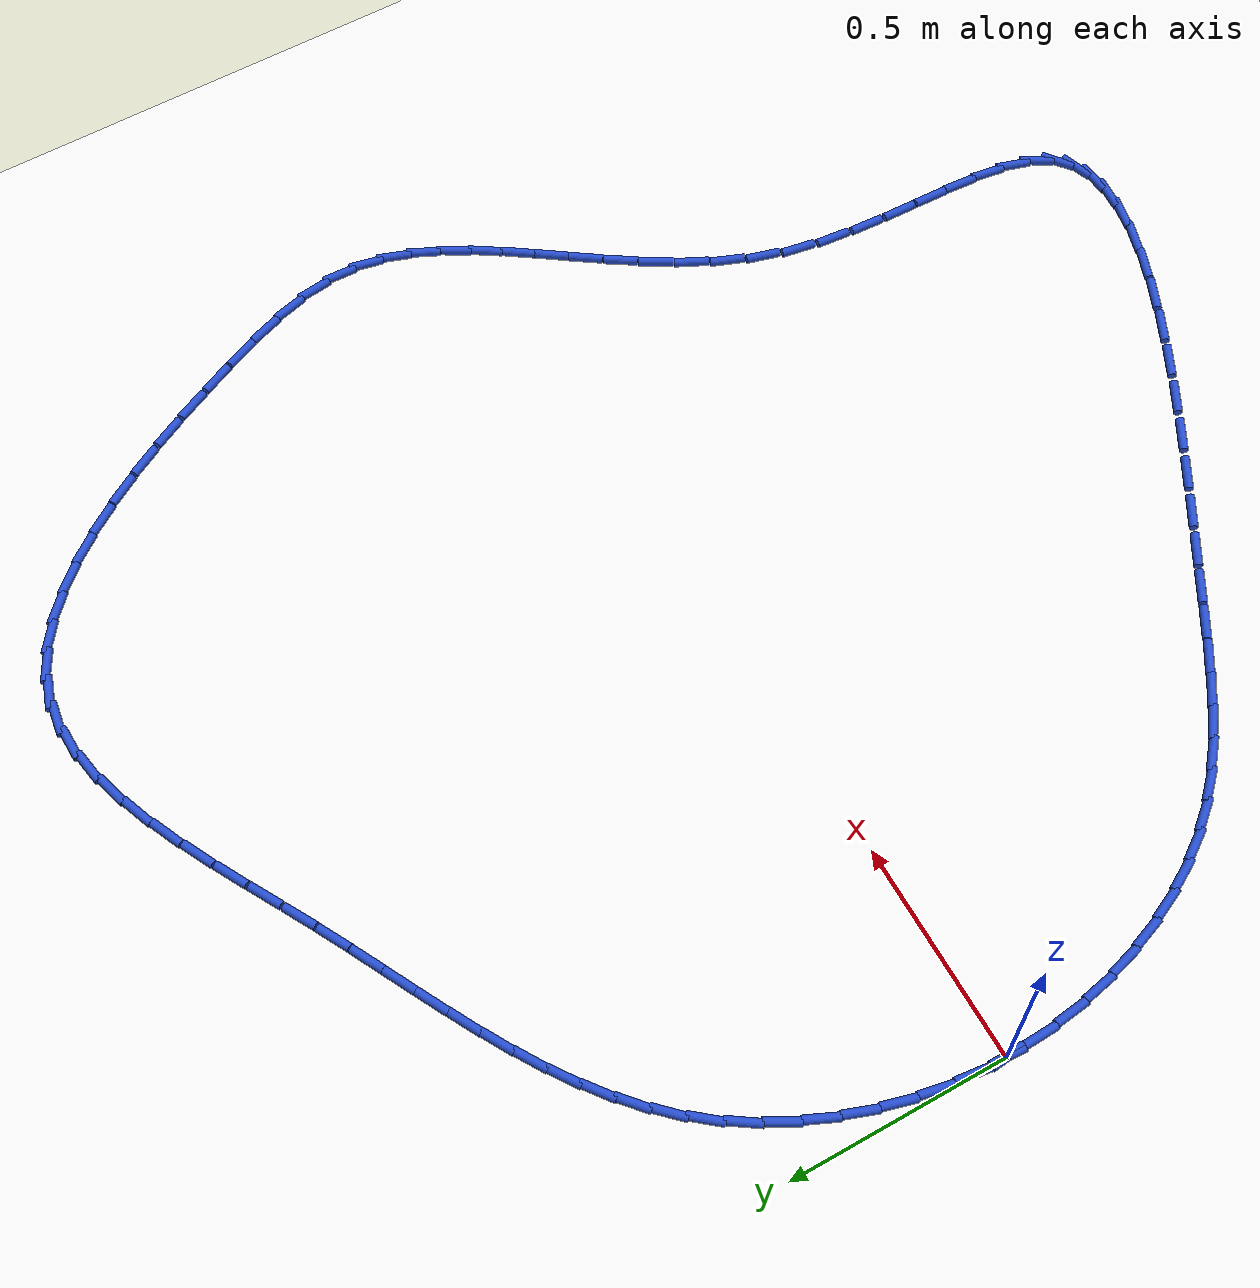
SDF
<sdf version="1.6">
 <world name="default">
  <light name="sun" type="directional">
   <pose>0 0 10 0 -0 0</pose>
   <diffuse>0.8 0.8 0.8 1</diffuse>
   <specular>0.2 0.2 0.2 1</specular>
   <attenuation>
    <range>1000</range>
    <constant>0.9</constant>
    <linear>0.01</linear>
    <quadratic>0.001</quadratic>
   </attenuation>
   <direction>-0.5 0.1 -0.9</direction>
  </light>
  <model name="ground_plane">
   <static>1</static>
   <link name="link">
    <collision name="collision">
     <geometry><plane><normal>0 0 1</normal><size>100 100</size></plane></geometry>
     <surface><friction><ode><mu>100</mu><mu2>50</mu2></ode></friction></surface>
    </collision>
    <visual name="visual">
     <cast_shadows>0</cast_shadows>
     <geometry><plane><normal>0 0 1</normal><size>100 100</size></plane></geometry>
     <material>
      <script><uri>file://media/materials/scripts/gazebo.material</uri><name>Gazebo/WhiteGlow</name></script>
     </material>
    </visual>
   </link>
  </model>
  <gravity>0 0 -9.8</gravity>
  <magnetic_field>6e-06 2.3e-05 -4.2e-05</magnetic_field>
  <atmosphere type="adiabatic"/>
  <physics name="default_physics" default="0" type="ode">
   <max_step_size>0.001</max_step_size>
   <real_time_factor>1</real_time_factor>
   <real_time_update_rate>1000</real_time_update_rate>
  </physics>
  <scene><ambient>0.4 0.4 0.4 1</ambient><background>0.7 0.7 0.7 1</background><shadows>1</shadows></scene>
  <spherical_coordinates>
   <surface_model>EARTH_WGS84</surface_model>
   <latitude_deg>0</latitude_deg>
   <longitude_deg>0</longitude_deg>
   <elevation>0</elevation>
   <heading_deg>0</heading_deg>
  </spherical_coordinates>
  <model name="line">
   <link name="link_0">
    <pose>-2.7755575615628914e-17 -5.551115123125783e-17 0.01 0 1.57 1.533787583954579</pose>
    <collision name="collision">
     <geometry><cylinder><radius>0.01</radius><length>0.08</length></cylinder></geometry>
    </collision>
    <visual name="visual">
     <material>
      <script><name>Gazebo/Blue</name><uri>file://media/materials/scripts/gazebo.material</uri></script>
     </material>
     <geometry><cylinder><radius>0.01</radius><length>0.08</length></cylinder></geometry>
    </visual>
   </link>
   <link name="link_1">
    <pose>0.002935788695738741 0.07929067611293499 0.01 0 1.57 1.4556822780847238</pose>
    <collision name="collision">
     <geometry><cylinder><radius>0.01</radius><length>0.08</length></cylinder></geometry>
    </collision>
    <visual name="visual">
     <material>
      <script><name>Gazebo/Blue</name><uri>file://media/materials/scripts/gazebo.material</uri></script>
     </material>
     <geometry><cylinder><radius>0.01</radius><length>0.08</length></cylinder></geometry>
    </visual>
   </link>
   <link name="link_2">
    <pose>0.012015870276710035 0.15782095757215628 0.01 0 1.57 1.3786054987707859</pose>
    <collision name="collision">
     <geometry><cylinder><radius>0.01</radius><length>0.08</length></cylinder></geometry>
    </collision>
    <visual name="visual">
     <material>
      <script><name>Gazebo/Blue</name><uri>file://media/materials/scripts/gazebo.material</uri></script>
     </material>
     <geometry><cylinder><radius>0.01</radius><length>0.08</length></cylinder></geometry>
    </visual>
   </link>
   <link name="link_3">
    <pose>0.0270281728820893 0.2349682800658405 0.01 0 1.57 1.301583329167883</pose>
    <collision name="collision">
     <geometry><cylinder><radius>0.01</radius><length>0.08</length></cylinder></geometry>
    </collision>
    <visual name="visual">
     <material>
      <script><name>Gazebo/Blue</name><uri>file://media/materials/scripts/gazebo.material</uri></script>
     </material>
     <geometry><cylinder><radius>0.01</radius><length>0.08</length></cylinder></geometry>
    </visual>
   </link>
   <link name="link_4">
    <pose>0.04776062465105198 0.31011007928216444 0.01 0 1.57 1.2235863750263407</pose>
    <collision name="collision">
     <geometry><cylinder><radius>0.01</radius><length>0.08</length></cylinder></geometry>
    </collision>
    <visual name="visual">
     <material>
      <script><name>Gazebo/Blue</name><uri>file://media/materials/scripts/gazebo.material</uri></script>
     </material>
     <geometry><cylinder><radius>0.01</radius><length>0.08</length></cylinder></geometry>
    </visual>
   </link>
   <link name="link_5">
    <pose>0.07400115372277347 0.38262379090930465 0.01 0 1.57 1.1435309519379948</pose>
    <collision name="collision">
     <geometry><cylinder><radius>0.01</radius><length>0.08</length></cylinder></geometry>
    </collision>
    <visual name="visual">
     <material>
      <script><name>Gazebo/Blue</name><uri>file://media/materials/scripts/gazebo.material</uri></script>
     </material>
     <geometry><cylinder><radius>0.01</radius><length>0.08</length></cylinder></geometry>
    </visual>
   </link>
   <link name="link_6">
    <pose>0.1055376882364292 0.451886850635438 0.01 0 1.57 1.0602829083131133</pose>
    <collision name="collision">
     <geometry><cylinder><radius>0.01</radius><length>0.08</length></cylinder></geometry>
    </collision>
    <visual name="visual">
     <material>
      <script><name>Gazebo/Blue</name><uri>file://media/materials/scripts/gazebo.material</uri></script>
     </material>
     <geometry><cylinder><radius>0.01</radius><length>0.08</length></cylinder></geometry>
    </visual>
   </link>
   <link name="link_7">
    <pose>0.14215815633119472 0.5172766941487414 0.01 0 1.57 0.9726728832802188</pose>
    <collision name="collision">
     <geometry><cylinder><radius>0.01</radius><length>0.08</length></cylinder></geometry>
    </collision>
    <visual name="visual">
     <material>
      <script><name>Gazebo/Blue</name><uri>file://media/materials/scripts/gazebo.material</uri></script>
     </material>
     <geometry><cylinder><radius>0.01</radius><length>0.08</length></cylinder></geometry>
    </visual>
   </link>
   <link name="link_8">
    <pose>0.1836504861462453 0.5781707571373913 0.01 0 1.57 0.8807605154184025</pose>
    <collision name="collision">
     <geometry><cylinder><radius>0.01</radius><length>0.08</length></cylinder></geometry>
    </collision>
    <visual name="visual">
     <material>
      <script><name>Gazebo/Blue</name><uri>file://media/materials/scripts/gazebo.material</uri></script>
     </material>
     <geometry><cylinder><radius>0.01</radius><length>0.08</length></cylinder></geometry>
    </visual>
   </link>
   <link name="link_9">
    <pose>0.22978828937616164 0.6340685150221524 0.01 0 1.57 0.79275385924668</pose>
    <collision name="collision">
     <geometry><cylinder><radius>0.01</radius><length>0.08</length></cylinder></geometry>
    </collision>
    <visual name="visual">
     <material>
      <script><name>Gazebo/Blue</name><uri>file://media/materials/scripts/gazebo.material</uri></script>
     </material>
     <geometry><cylinder><radius>0.01</radius><length>0.08</length></cylinder></geometry>
    </visual>
   </link>
   <link name="link_10">
    <pose>0.28025028074148894 0.6852783871803768 0.01 0 1.57 0.713986679667441</pose>
    <collision name="collision">
     <geometry><cylinder><radius>0.01</radius><length>0.08</length></cylinder></geometry>
    </collision>
    <visual name="visual">
     <material>
      <script><name>Gazebo/Blue</name><uri>file://media/materials/scripts/gazebo.material</uri></script>
     </material>
     <geometry><cylinder><radius>0.01</radius><length>0.08</length></cylinder></geometry>
    </visual>
   </link>
   <link name="link_11">
    <pose>0.33467656507544224 0.7324379208181733 0.01 0 1.57 0.6459754363775712</pose>
    <collision name="collision">
     <geometry><cylinder><radius>0.01</radius><length>0.08</length></cylinder></geometry>
    </collision>
    <visual name="visual">
     <material>
      <script><name>Gazebo/Blue</name><uri>file://media/materials/scripts/gazebo.material</uri></script>
     </material>
     <geometry><cylinder><radius>0.01</radius><length>0.08</length></cylinder></geometry>
    </visual>
   </link>
   <link name="link_12">
    <pose>0.39270713496937143 0.776185619941164 0.01 0 1.57 0.589407596191272</pose>
    <collision name="collision">
     <geometry><cylinder><radius>0.01</radius><length>0.08</length></cylinder></geometry>
    </collision>
    <visual name="visual">
     <material>
      <script><name>Gazebo/Blue</name><uri>file://media/materials/scripts/gazebo.material</uri></script>
     </material>
     <geometry><cylinder><radius>0.01</radius><length>0.08</length></cylinder></geometry>
    </visual>
   </link>
   <link name="link_13">
    <pose>0.4539819830146266 0.8171599885549717 0.01 0 1.57 0.5443533886127799</pose>
    <collision name="collision">
     <geometry><cylinder><radius>0.01</radius><length>0.08</length></cylinder></geometry>
    </collision>
    <visual name="visual">
     <material>
      <script><name>Gazebo/Blue</name><uri>file://media/materials/scripts/gazebo.material</uri></script>
     </material>
     <geometry><cylinder><radius>0.01</radius><length>0.08</length></cylinder></geometry>
    </visual>
   </link>
   <link name="link_14">
    <pose>0.5181411018025576 0.8559995306652186 0.01 0 1.57 0.510494322493319</pose>
    <collision name="collision">
     <geometry><cylinder><radius>0.01</radius><length>0.08</length></cylinder></geometry>
    </collision>
    <visual name="visual">
     <material>
      <script><name>Gazebo/Blue</name><uri>file://media/materials/scripts/gazebo.material</uri></script>
     </material>
     <geometry><cylinder><radius>0.01</radius><length>0.08</length></cylinder></geometry>
    </visual>
   </link>
   <link name="link_15">
    <pose>0.5848244839245142 0.8933427502775276 0.01 0 1.57 0.48731495474559483</pose>
    <collision name="collision">
     <geometry><cylinder><radius>0.01</radius><length>0.08</length></cylinder></geometry>
    </collision>
    <visual name="visual">
     <material>
      <script><name>Gazebo/Blue</name><uri>file://media/materials/scripts/gazebo.material</uri></script>
     </material>
     <geometry><cylinder><radius>0.01</radius><length>0.08</length></cylinder></geometry>
    </visual>
   </link>
   <link name="link_16">
    <pose>0.6536721219718467 0.929828151397521 0.01 0 1.57 0.47423621020214</pose>
    <collision name="collision">
     <geometry><cylinder><radius>0.01</radius><length>0.08</length></cylinder></geometry>
    </collision>
    <visual name="visual">
     <material>
      <script><name>Gazebo/Blue</name><uri>file://media/materials/scripts/gazebo.material</uri></script>
     </material>
     <geometry><cylinder><radius>0.01</radius><length>0.08</length></cylinder></geometry>
    </visual>
   </link>
   <link name="link_17">
    <pose>0.7243240085359046 0.9660942380308208 0.01 0 1.57 0.4706932798124599</pose>
    <collision name="collision">
     <geometry><cylinder><radius>0.01</radius><length>0.08</length></cylinder></geometry>
    </collision>
    <visual name="visual">
     <material>
      <script><name>Gazebo/Blue</name><uri>file://media/materials/scripts/gazebo.material</uri></script>
     </material>
     <geometry><cylinder><radius>0.01</radius><length>0.08</length></cylinder></geometry>
    </visual>
   </link>
   <link name="link_18">
    <pose>0.7964201362080376 1.0027795141830502 0.01 0 1.57 0.4761702120707619</pose>
    <collision name="collision">
     <geometry><cylinder><radius>0.01</radius><length>0.08</length></cylinder></geometry>
    </collision>
    <visual name="visual">
     <material>
      <script><name>Gazebo/Blue</name><uri>file://media/materials/scripts/gazebo.material</uri></script>
     </material>
     <geometry><cylinder><radius>0.01</radius><length>0.08</length></cylinder></geometry>
    </visual>
   </link>
   <link name="link_19">
    <pose>0.8696004975795963 1.040522483859831 0.01 0 1.57 0.4899211529663628</pose>
    <collision name="collision">
     <geometry><cylinder><radius>0.01</radius><length>0.08</length></cylinder></geometry>
    </collision>
    <visual name="visual">
     <material>
      <script><name>Gazebo/Blue</name><uri>file://media/materials/scripts/gazebo.material</uri></script>
     </material>
     <geometry><cylinder><radius>0.01</radius><length>0.08</length></cylinder></geometry>
    </visual>
   </link>
   <link name="link_20">
    <pose>0.9435057139420632 1.0799351654925113 0.01 0 1.57 0.5023033389270932</pose>
    <collision name="collision">
     <geometry><cylinder><radius>0.01</radius><length>0.08</length></cylinder></geometry>
    </collision>
    <visual name="visual">
     <material>
      <script><name>Gazebo/Blue</name><uri>file://media/materials/scripts/gazebo.material</uri></script>
     </material>
     <geometry><cylinder><radius>0.01</radius><length>0.08</length></cylinder></geometry>
    </visual>
   </link>
   <link name="link_21">
    <pose>1.0177974424008538 1.120743390945611 0.01 0 1.57 0.5023698826703656</pose>
    <collision name="collision">
     <geometry><cylinder><radius>0.01</radius><length>0.08</length></cylinder></geometry>
    </collision>
    <visual name="visual">
     <material>
      <script><name>Gazebo/Blue</name><uri>file://media/materials/scripts/gazebo.material</uri></script>
     </material>
     <geometry><cylinder><radius>0.01</radius><length>0.08</length></cylinder></geometry>
    </visual>
   </link>
   <link name="link_22">
    <pose>1.0921628451198362 1.161598527351353 0.01 0 1.57 0.4894743146025948</pose>
    <collision name="collision">
     <geometry><cylinder><radius>0.01</radius><length>0.08</length></cylinder></geometry>
    </collision>
    <visual name="visual">
     <material>
      <script><name>Gazebo/Blue</name><uri>file://media/materials/scripts/gazebo.material</uri></script>
     </material>
     <geometry><cylinder><radius>0.01</radius><length>0.08</length></cylinder></geometry>
    </visual>
   </link>
   <link name="link_23">
    <pose>1.166290617224221 1.2010873619899995 0.01 0 1.57 0.4627763472920602</pose>
    <collision name="collision">
     <geometry><cylinder><radius>0.01</radius><length>0.08</length></cylinder></geometry>
    </collision>
    <visual name="visual">
     <material>
      <script><name>Gazebo/Blue</name><uri>file://media/materials/scripts/gazebo.material</uri></script>
     </material>
     <geometry><cylinder><radius>0.01</radius><length>0.08</length></cylinder></geometry>
    </visual>
   </link>
   <link name="link_24">
    <pose>1.2398694538392179 1.2377966821418127 0.01 0 1.57 0.42048675423917414</pose>
    <collision name="collision">
     <geometry><cylinder><radius>0.01</radius><length>0.08</length></cylinder></geometry>
    </collision>
    <visual name="visual">
     <material>
      <script><name>Gazebo/Blue</name><uri>file://media/materials/scripts/gazebo.material</uri></script>
     </material>
     <geometry><cylinder><radius>0.01</radius><length>0.08</length></cylinder></geometry>
    </visual>
   </link>
   <link name="link_25">
    <pose>1.312588050090038 1.270313275087055 0.01 0 1.57 0.35975683265878916</pose>
    <collision name="collision">
     <geometry><cylinder><radius>0.01</radius><length>0.08</length></cylinder></geometry>
    </collision>
    <visual name="visual">
     <material>
      <script><name>Gazebo/Blue</name><uri>file://media/materials/scripts/gazebo.material</uri></script>
     </material>
     <geometry><cylinder><radius>0.01</radius><length>0.08</length></cylinder></geometry>
    </visual>
   </link>
   <link name="link_26">
    <pose>1.384135101101892 1.2972239281059883 0.01 0 1.57 0.2766251133826907</pose>
    <collision name="collision">
     <geometry><cylinder><radius>0.01</radius><length>0.08</length></cylinder></geometry>
    </collision>
    <visual name="visual">
     <material>
      <script><name>Gazebo/Blue</name><uri>file://media/materials/scripts/gazebo.material</uri></script>
     </material>
     <geometry><cylinder><radius>0.01</radius><length>0.08</length></cylinder></geometry>
    </visual>
   </link>
   <link name="link_27">
    <pose>1.4541993019999908 1.3171154284788762 0.01 0 1.57 0.16629991850325965</pose>
    <collision name="collision">
     <geometry><cylinder><radius>0.01</radius><length>0.08</length></cylinder></geometry>
    </collision>
    <visual name="visual">
     <material>
      <script><name>Gazebo/Blue</name><uri>file://media/materials/scripts/gazebo.material</uri></script>
     </material>
     <geometry><cylinder><radius>0.01</radius><length>0.08</length></cylinder></geometry>
    </visual>
   </link>
   <link name="link_28">
    <pose>1.5224693479095441 1.3285745634859794 0.01 0 1.57 0.024382184745504368</pose>
    <collision name="collision">
     <geometry><cylinder><radius>0.01</radius><length>0.08</length></cylinder></geometry>
    </collision>
    <visual name="visual">
     <material>
      <script><name>Gazebo/Blue</name><uri>file://media/materials/scripts/gazebo.material</uri></script>
     </material>
     <geometry><cylinder><radius>0.01</radius><length>0.08</length></cylinder></geometry>
    </visual>
   </link>
   <link name="link_29">
    <pose>1.5886339339557622 1.3301881204075612 0.01 0 1.57 -0.1500690092207144</pose>
    <collision name="collision">
     <geometry><cylinder><radius>0.01</radius><length>0.08</length></cylinder></geometry>
    </collision>
    <visual name="visual">
     <material>
      <script><name>Gazebo/Blue</name><uri>file://media/materials/scripts/gazebo.material</uri></script>
     </material>
     <geometry><cylinder><radius>0.01</radius><length>0.08</length></cylinder></geometry>
    </visual>
   </link>
   <link name="link_30">
    <pose>1.6523825676665351 1.3205489569734135 0.01 0 1.57 -0.338182884031084</pose>
    <collision name="collision">
     <geometry><cylinder><radius>0.01</radius><length>0.08</length></cylinder></geometry>
    </collision>
    <visual name="visual">
     <material>
      <script><name>Gazebo/Blue</name><uri>file://media/materials/scripts/gazebo.material</uri></script>
     </material>
     <geometry><cylinder><radius>0.01</radius><length>0.08</length></cylinder></geometry>
    </visual>
   </link>
   <link name="link_31">
    <pose>1.7135118522117672 1.2990501728466533 0.01 0 1.57 -0.5053163054829685</pose>
    <collision name="collision">
     <geometry><cylinder><radius>0.01</radius><length>0.08</length></cylinder></geometry>
    </collision>
    <visual name="visual">
     <material>
      <script><name>Gazebo/Blue</name><uri>file://media/materials/scripts/gazebo.material</uri></script>
     </material>
     <geometry><cylinder><radius>0.01</radius><length>0.08</length></cylinder></geometry>
    </visual>
   </link>
   <link name="link_32">
    <pose>1.7720312930738822 1.2666757200815222 0.01 0 1.57 -0.6448721541097728</pose>
    <collision name="collision">
     <geometry><cylinder><radius>0.01</radius><length>0.08</length></cylinder></geometry>
    </collision>
    <visual name="visual">
     <material>
      <script><name>Gazebo/Blue</name><uri>file://media/materials/scripts/gazebo.material</uri></script>
     </material>
     <geometry><cylinder><radius>0.01</radius><length>0.08</length></cylinder></geometry>
    </visual>
   </link>
   <link name="link_33">
    <pose>1.8279755558398592 1.2245975525064825 0.01 0 1.57 -0.7585444828092457</pose>
    <collision name="collision">
     <geometry><cylinder><radius>0.01</radius><length>0.08</length></cylinder></geometry>
    </collision>
    <visual name="visual">
     <material>
      <script><name>Gazebo/Blue</name><uri>file://media/materials/scripts/gazebo.material</uri></script>
     </material>
     <geometry><cylinder><radius>0.01</radius><length>0.08</length></cylinder></geometry>
    </visual>
   </link>
   <link name="link_34">
    <pose>1.8813793060966746 1.1739876239499956 0.01 0 1.57 -0.8502651053967181</pose>
    <collision name="collision">
     <geometry><cylinder><radius>0.01</radius><length>0.08</length></cylinder></geometry>
    </collision>
    <visual name="visual">
     <material>
      <script><name>Gazebo/Blue</name><uri>file://media/materials/scripts/gazebo.material</uri></script>
     </material>
     <geometry><cylinder><radius>0.01</radius><length>0.08</length></cylinder></geometry>
    </visual>
   </link>
   <link name="link_35">
    <pose>1.9322772094313065 1.1160178882405238 0.01 0 1.57 -0.9242245917079027</pose>
    <collision name="collision">
     <geometry><cylinder><radius>0.01</radius><length>0.08</length></cylinder></geometry>
    </collision>
    <visual name="visual">
     <material>
      <script><name>Gazebo/Blue</name><uri>file://media/materials/scripts/gazebo.material</uri></script>
     </material>
     <geometry><cylinder><radius>0.01</radius><length>0.08</length></cylinder></geometry>
    </visual>
   </link>
   <link name="link_36">
    <pose>1.9807039314307335 1.0518602992065291 0.01 0 1.57 -0.9840503409601418</pose>
    <collision name="collision">
     <geometry><cylinder><radius>0.01</radius><length>0.08</length></cylinder></geometry>
    </collision>
    <visual name="visual">
     <material>
      <script><name>Gazebo/Blue</name><uri>file://media/materials/scripts/gazebo.material</uri></script>
     </material>
     <geometry><cylinder><radius>0.01</radius><length>0.08</length></cylinder></geometry>
    </visual>
   </link>
   <link name="link_37">
    <pose>2.026694137681933 0.9826868106764725 0.01 0 1.57 -1.032616445907952</pose>
    <collision name="collision">
     <geometry><cylinder><radius>0.01</radius><length>0.08</length></cylinder></geometry>
    </collision>
    <visual name="visual">
     <material>
      <script><name>Gazebo/Blue</name><uri>file://media/materials/scripts/gazebo.material</uri></script>
     </material>
     <geometry><cylinder><radius>0.01</radius><length>0.08</length></cylinder></geometry>
    </visual>
   </link>
   <link name="link_38">
    <pose>2.070282493771883 0.9096693764788161 0.01 0 1.57 -1.072101204768909</pose>
    <collision name="collision">
     <geometry><cylinder><radius>0.01</radius><length>0.08</length></cylinder></geometry>
    </collision>
    <visual name="visual">
     <material>
      <script><name>Gazebo/Blue</name><uri>file://media/materials/scripts/gazebo.material</uri></script>
     </material>
     <geometry><cylinder><radius>0.01</radius><length>0.08</length></cylinder></geometry>
    </visual>
   </link>
   <link name="link_39">
    <pose>2.111503665287561 0.8339799504420213 0.01 0 1.57 -1.1041071357830314</pose>
    <collision name="collision">
     <geometry><cylinder><radius>0.01</radius><length>0.08</length></cylinder></geometry>
    </collision>
    <visual name="visual">
     <material>
      <script><name>Gazebo/Blue</name><uri>file://media/materials/scripts/gazebo.material</uri></script>
     </material>
     <geometry><cylinder><radius>0.01</radius><length>0.08</length></cylinder></geometry>
    </visual>
   </link>
   <link name="link_40">
    <pose>2.150392317815944 0.7567904863945505 0.01 0 1.57 -1.1297720182729507</pose>
    <collision name="collision">
     <geometry><cylinder><radius>0.01</radius><length>0.08</length></cylinder></geometry>
    </collision>
    <visual name="visual">
     <material>
      <script><name>Gazebo/Blue</name><uri>file://media/materials/scripts/gazebo.material</uri></script>
     </material>
     <geometry><cylinder><radius>0.01</radius><length>0.08</length></cylinder></geometry>
    </visual>
   </link>
   <link name="link_41">
    <pose>2.186983116944012 0.6792729381648657 0.01 0 1.57 -1.1500883811507479</pose>
    <collision name="collision">
     <geometry><cylinder><radius>0.01</radius><length>0.08</length></cylinder></geometry>
    </collision>
    <visual name="visual">
     <material>
      <script><name>Gazebo/Blue</name><uri>file://media/materials/scripts/gazebo.material</uri></script>
     </material>
     <geometry><cylinder><radius>0.01</radius><length>0.08</length></cylinder></geometry>
    </visual>
   </link>
   <link name="link_42">
    <pose>2.221292399054233 0.6025907759199666 0.01 0 1.57 -1.1774213518741026</pose>
    <collision name="collision">
     <geometry><cylinder><radius>0.01</radius><length>0.08</length></cylinder></geometry>
    </collision>
    <visual name="visual">
     <material>
      <script><name>Gazebo/Blue</name><uri>file://media/materials/scripts/gazebo.material</uri></script>
     </material>
     <geometry><cylinder><radius>0.01</radius><length>0.08</length></cylinder></geometry>
    </visual>
   </link>
   <link name="link_43">
    <pose>2.2524556002997285 0.5274997456769046 0.01 0 1.57 -1.2312489774451463</pose>
    <collision name="collision">
     <geometry><cylinder><radius>0.01</radius><length>0.08</length></cylinder></geometry>
    </collision>
    <visual name="visual">
     <material>
      <script><name>Gazebo/Blue</name><uri>file://media/materials/scripts/gazebo.material</uri></script>
     </material>
     <geometry><cylinder><radius>0.01</radius><length>0.08</length></cylinder></geometry>
    </visual>
   </link>
   <link name="link_44">
    <pose>2.2783556254848074 0.4541758600590235 0.01 0 1.57 -1.318347679248358</pose>
    <collision name="collision">
     <geometry><cylinder><radius>0.01</radius><length>0.08</length></cylinder></geometry>
    </collision>
    <visual name="visual">
     <material>
      <script><name>Gazebo/Blue</name><uri>file://media/materials/scripts/gazebo.material</uri></script>
     </material>
     <geometry><cylinder><radius>0.01</radius><length>0.08</length></cylinder></geometry>
    </visual>
   </link>
   <link name="link_45">
    <pose>2.296779825352852 0.382750904549104 0.01 0 1.57 -1.4455695972976907</pose>
    <collision name="collision">
     <geometry><cylinder><radius>0.01</radius><length>0.08</length></cylinder></geometry>
    </collision>
    <visual name="visual">
     <material>
      <script><name>Gazebo/Blue</name><uri>file://media/materials/scripts/gazebo.material</uri></script>
     </material>
     <geometry><cylinder><radius>0.01</radius><length>0.08</length></cylinder></geometry>
    </visual>
   </link>
   <link name="link_46">
    <pose>2.305515550647243 0.3133566646299261 0.01 0 1.57 1.5303822421279432</pose>
    <collision name="collision">
     <geometry><cylinder><radius>0.01</radius><length>0.08</length></cylinder></geometry>
    </collision>
    <visual name="visual">
     <material>
      <script><name>Gazebo/Blue</name><uri>file://media/materials/scripts/gazebo.material</uri></script>
     </material>
     <geometry><cylinder><radius>0.01</radius><length>0.08</length></cylinder></geometry>
    </visual>
   </link>
   <link name="link_47">
    <pose>2.302794051126273 0.2460529582966711 0.01 0 1.57 1.3679161533135231</pose>
    <collision name="collision">
     <geometry><cylinder><radius>0.01</radius><length>0.08</length></cylinder></geometry>
    </collision>
    <visual name="visual">
     <material>
      <script><name>Gazebo/Blue</name><uri>file://media/materials/scripts/gazebo.material</uri></script>
     </material>
     <geometry><cylinder><radius>0.01</radius><length>0.08</length></cylinder></geometry>
    </visual>
   </link>
   <link name="link_48">
    <pose>2.2893092027921482 0.18050034826861788 0.01 0 1.57 1.2312460998937307</pose>
    <collision name="collision">
     <geometry><cylinder><radius>0.01</radius><length>0.08</length></cylinder></geometry>
    </collision>
    <visual name="visual">
     <material>
      <script><name>Gazebo/Blue</name><uri>file://media/materials/scripts/gazebo.material</uri></script>
     </material>
     <geometry><cylinder><radius>0.01</radius><length>0.08</length></cylinder></geometry>
    </visual>
   </link>
   <link name="link_49">
    <pose>2.2666040089061896 0.11622173181989105 0.01 0 1.57 1.1244234609656796</pose>
    <collision name="collision">
     <geometry><cylinder><radius>0.01</radius><length>0.08</length></cylinder></geometry>
    </collision>
    <visual name="visual">
     <material>
      <script><name>Gazebo/Blue</name><uri>file://media/materials/scripts/gazebo.material</uri></script>
     </material>
     <geometry><cylinder><radius>0.01</radius><length>0.08</length></cylinder></geometry>
    </visual>
   </link>
   <link name="link_50">
    <pose>2.2362222679671744 0.05273987729609939 0.01 0 1.57 1.0466312842538454</pose>
    <collision name="collision">
     <geometry><cylinder><radius>0.01</radius><length>0.08</length></cylinder></geometry>
    </collision>
    <visual name="visual">
     <material>
      <script><name>Gazebo/Blue</name><uri>file://media/materials/scripts/gazebo.material</uri></script>
     </material>
     <geometry><cylinder><radius>0.01</radius><length>0.08</length></cylinder></geometry>
    </visual>
   </link>
   <link name="link_51">
    <pose>2.1997077784738828 -0.010422446957149039 0.01 0 1.57 0.9950272675620463</pose>
    <collision name="collision">
     <geometry><cylinder><radius>0.01</radius><length>0.08</length></cylinder></geometry>
    </collision>
    <visual name="visual">
     <material>
      <script><name>Gazebo/Blue</name><uri>file://media/materials/scripts/gazebo.material</uri></script>
     </material>
     <geometry><cylinder><radius>0.01</radius><length>0.08</length></cylinder></geometry>
    </visual>
   </link>
   <link name="link_52">
    <pose>2.158604338925091 -0.07374247259424585 0.01 0 1.57 0.9666050225212874</pose>
    <collision name="collision">
     <geometry><cylinder><radius>0.01</radius><length>0.08</length></cylinder></geometry>
    </collision>
    <visual name="visual">
     <material>
      <script><name>Gazebo/Blue</name><uri>file://media/materials/scripts/gazebo.material</uri></script>
     </material>
     <geometry><cylinder><radius>0.01</radius><length>0.08</length></cylinder></geometry>
    </visual>
   </link>
   <link name="link_53">
    <pose>2.1144557478195773 -0.1376974312695829 0.01 0 1.57 0.95900918372669</pose>
    <collision name="collision">
     <geometry><cylinder><radius>0.01</radius><length>0.08</length></cylinder></geometry>
    </collision>
    <visual name="visual">
     <material>
      <script><name>Gazebo/Blue</name><uri>file://media/materials/scripts/gazebo.material</uri></script>
     </material>
     <geometry><cylinder><radius>0.01</radius><length>0.08</length></cylinder></geometry>
    </visual>
   </link>
   <link name="link_54">
    <pose>2.0688058036561197 -0.20276455463755194 0.01 0 1.57 0.9707419617561436</pose>
    <collision name="collision">
     <geometry><cylinder><radius>0.01</radius><length>0.08</length></cylinder></geometry>
    </collision>
    <visual name="visual">
     <material>
      <script><name>Gazebo/Blue</name><uri>file://media/materials/scripts/gazebo.material</uri></script>
     </material>
     <geometry><cylinder><radius>0.01</radius><length>0.08</length></cylinder></geometry>
    </visual>
   </link>
   <link name="link_55">
    <pose>2.023198304933497 -0.2694210743525447 0.01 0 1.57 1.0010864222628306</pose>
    <collision name="collision">
     <geometry><cylinder><radius>0.01</radius><length>0.08</length></cylinder></geometry>
    </collision>
    <visual name="visual">
     <material>
      <script><name>Gazebo/Blue</name><uri>file://media/materials/scripts/gazebo.material</uri></script>
     </material>
     <geometry><cylinder><radius>0.01</radius><length>0.08</length></cylinder></geometry>
    </visual>
   </link>
   <link name="link_56">
    <pose>1.9791770501504862 -0.338144222068953 0.01 0 1.57 1.0498833106677288</pose>
    <collision name="collision">
     <geometry><cylinder><radius>0.01</radius><length>0.08</length></cylinder></geometry>
    </collision>
    <visual name="visual">
     <material>
      <script><name>Gazebo/Blue</name><uri>file://media/materials/scripts/gazebo.material</uri></script>
     </material>
     <geometry><cylinder><radius>0.01</radius><length>0.08</length></cylinder></geometry>
    </visual>
   </link>
   <link name="link_57">
    <pose>1.9382858378058652 -0.4094112294411686 0.01 0 1.57 1.117177712537289</pose>
    <collision name="collision">
     <geometry><cylinder><radius>0.01</radius><length>0.08</length></cylinder></geometry>
    </collision>
    <visual name="visual">
     <material>
      <script><name>Gazebo/Blue</name><uri>file://media/materials/scripts/gazebo.material</uri></script>
     </material>
     <geometry><cylinder><radius>0.01</radius><length>0.08</length></cylinder></geometry>
    </visual>
   </link>
   <link name="link_58">
    <pose>1.902068466398413 -0.4836993281235823 0.01 0 1.57 1.202705866382489</pose>
    <collision name="collision">
     <geometry><cylinder><radius>0.01</radius><length>0.08</length></cylinder></geometry>
    </collision>
    <visual name="visual">
     <material>
      <script><name>Gazebo/Blue</name><uri>file://media/materials/scripts/gazebo.material</uri></script>
     </material>
     <geometry><cylinder><radius>0.01</radius><length>0.08</length></cylinder></geometry>
    </visual>
   </link>
   <link name="link_59">
    <pose>1.872068734426907 -0.5614857497705876 0.01 0 1.57 1.3051490434521704</pose>
    <collision name="collision">
     <geometry><cylinder><radius>0.01</radius><length>0.08</length></cylinder></geometry>
    </collision>
    <visual name="visual">
     <material>
      <script><name>Gazebo/Blue</name><uri>file://media/materials/scripts/gazebo.material</uri></script>
     </material>
     <geometry><cylinder><radius>0.01</radius><length>0.08</length></cylinder></geometry>
    </visual>
   </link>
   <link name="link_60">
    <pose>1.8498242601817534 -0.643243570617542 0.01 0 1.57 1.4078281910337163</pose>
    <collision name="collision">
     <geometry><cylinder><radius>0.01</radius><length>0.08</length></cylinder></geometry>
    </collision>
    <visual name="visual">
     <material>
      <script><name>Gazebo/Blue</name><uri>file://media/materials/scripts/gazebo.material</uri></script>
     </material>
     <geometry><cylinder><radius>0.01</radius><length>0.08</length></cylinder></geometry>
    </visual>
   </link>
   <link name="link_61">
    <pose>1.8357720134759805 -0.7287058181250752 0.01 0 1.57 1.4818917380299887</pose>
    <collision name="collision">
     <geometry><cylinder><radius>0.01</radius><length>0.08</length></cylinder></geometry>
    </collision>
    <visual name="visual">
     <material>
      <script><name>Gazebo/Blue</name><uri>file://media/materials/scripts/gazebo.material</uri></script>
     </material>
     <geometry><cylinder><radius>0.01</radius><length>0.08</length></cylinder></geometry>
    </visual>
   </link>
   <link name="link_62">
    <pose>1.8279889788907544 -0.8160187241373189 0.01 0 1.57 1.5278648411412548</pose>
    <collision name="collision">
     <geometry><cylinder><radius>0.01</radius><length>0.08</length></cylinder></geometry>
    </collision>
    <visual name="visual">
     <material>
      <script><name>Gazebo/Blue</name><uri>file://media/materials/scripts/gazebo.material</uri></script>
     </material>
     <geometry><cylinder><radius>0.01</radius><length>0.08</length></cylinder></geometry>
    </visual>
   </link>
   <link name="link_63">
    <pose>1.8242471445138755 -0.9031234484105853 0.01 0 1.57 1.5480668811998088</pose>
    <collision name="collision">
     <geometry><cylinder><radius>0.01</radius><length>0.08</length></cylinder></geometry>
    </collision>
    <visual name="visual">
     <material>
      <script><name>Gazebo/Blue</name><uri>file://media/materials/scripts/gazebo.material</uri></script>
     </material>
     <geometry><cylinder><radius>0.01</radius><length>0.08</length></cylinder></geometry>
    </visual>
   </link>
   <link name="link_64">
    <pose>1.8223184984331482 -0.9879611507011875 0.01 0 1.57 1.5416973990456262</pose>
    <collision name="collision">
     <geometry><cylinder><radius>0.01</radius><length>0.08</length></cylinder></geometry>
    </collision>
    <visual name="visual">
     <material>
      <script><name>Gazebo/Blue</name><uri>file://media/materials/scripts/gazebo.material</uri></script>
     </material>
     <geometry><cylinder><radius>0.01</radius><length>0.08</length></cylinder></geometry>
    </visual>
   </link>
   <link name="link_65">
    <pose>1.8199750287363723 -1.068472990765438 0.01 0 1.57 1.5036305762483873</pose>
    <collision name="collision">
     <geometry><cylinder><radius>0.01</radius><length>0.08</length></cylinder></geometry>
    </collision>
    <visual name="visual">
     <material>
      <script><name>Gazebo/Blue</name><uri>file://media/materials/scripts/gazebo.material</uri></script>
     </material>
     <geometry><cylinder><radius>0.01</radius><length>0.08</length></cylinder></geometry>
    </visual>
   </link>
   <link name="link_66">
    <pose>1.8149887235113507 -1.1426001283596492 0.01 0 1.57 1.4218376882312793</pose>
    <collision name="collision">
     <geometry><cylinder><radius>0.01</radius><length>0.08</length></cylinder></geometry>
    </collision>
    <visual name="visual">
     <material>
      <script><name>Gazebo/Blue</name><uri>file://media/materials/scripts/gazebo.material</uri></script>
     </material>
     <geometry><cylinder><radius>0.01</radius><length>0.08</length></cylinder></geometry>
    </visual>
   </link>
   <link name="link_67">
    <pose>1.805131570845885 -1.2082837232401342 0.01 0 1.57 1.2726752595419588</pose>
    <collision name="collision">
     <geometry><cylinder><radius>0.01</radius><length>0.08</length></cylinder></geometry>
    </collision>
    <visual name="visual">
     <material>
      <script><name>Gazebo/Blue</name><uri>file://media/materials/scripts/gazebo.material</uri></script>
     </material>
     <geometry><cylinder><radius>0.01</radius><length>0.08</length></cylinder></geometry>
    </visual>
   </link>
   <link name="link_68">
    <pose>1.7881755588277772 -1.2634649351632055 0.01 0 1.57 1.0186238528742082</pose>
    <collision name="collision">
     <geometry><cylinder><radius>0.01</radius><length>0.08</length></cylinder></geometry>
    </collision>
    <visual name="visual">
     <material>
      <script><name>Gazebo/Blue</name><uri>file://media/materials/scripts/gazebo.material</uri></script>
     </material>
     <geometry><cylinder><radius>0.01</radius><length>0.08</length></cylinder></geometry>
    </visual>
   </link>
   <link name="link_69">
    <pose>1.7619081103456105 -1.306100092857277 0.01 0 1.57 0.6721009291844874</pose>
    <collision name="collision">
     <geometry><cylinder><radius>0.01</radius><length>0.08</length></cylinder></geometry>
    </collision>
    <visual name="visual">
     <material>
      <script><name>Gazebo/Blue</name><uri>file://media/materials/scripts/gazebo.material</uri></script>
     </material>
     <geometry><cylinder><radius>0.01</radius><length>0.08</length></cylinder></geometry>
    </visual>
   </link>
   <link name="link_70">
    <pose>1.7252549717965129 -1.3352642435744235 0.01 0 1.57 0.3454968926150735</pose>
    <collision name="collision">
     <geometry><cylinder><radius>0.01</radius><length>0.08</length></cylinder></geometry>
    </collision>
    <visual name="visual">
     <material>
      <script><name>Gazebo/Blue</name><uri>file://media/materials/scripts/gazebo.material</uri></script>
     </material>
     <geometry><cylinder><radius>0.01</radius><length>0.08</length></cylinder></geometry>
    </visual>
   </link>
   <link name="link_71">
    <pose>1.6790405327124096 -1.3518983779727691 0.01 0 1.57 0.09505637746041126</pose>
    <collision name="collision">
     <geometry><cylinder><radius>0.01</radius><length>0.08</length></cylinder></geometry>
    </collision>
    <visual name="visual">
     <material>
      <script><name>Gazebo/Blue</name><uri>file://media/materials/scripts/gazebo.material</uri></script>
     </material>
     <geometry><cylinder><radius>0.01</radius><length>0.08</length></cylinder></geometry>
    </visual>
   </link>
   <link name="link_72">
    <pose>1.624269271146924 -1.3571204736246274 0.01 0 1.57 -0.08120218183211428</pose>
    <collision name="collision">
     <geometry><cylinder><radius>0.01</radius><length>0.08</length></cylinder></geometry>
    </collision>
    <visual name="visual">
     <material>
      <script><name>Gazebo/Blue</name><uri>file://media/materials/scripts/gazebo.material</uri></script>
     </material>
     <geometry><cylinder><radius>0.01</radius><length>0.08</length></cylinder></geometry>
    </visual>
   </link>
   <link name="link_73">
    <pose>1.561945665153681 -1.352048508102309 0.01 0 1.57 -0.20400097831248473</pose>
    <collision name="collision">
     <geometry><cylinder><radius>0.01</radius><length>0.08</length></cylinder></geometry>
    </collision>
    <visual name="visual">
     <material>
      <script><name>Gazebo/Blue</name><uri>file://media/materials/scripts/gazebo.material</uri></script>
     </material>
     <geometry><cylinder><radius>0.01</radius><length>0.08</length></cylinder></geometry>
    </visual>
   </link>
   <link name="link_74">
    <pose>1.4930741927863067 -1.3378004589781267 0.01 0 1.57 -0.2912311281557566</pose>
    <collision name="collision">
     <geometry><cylinder><radius>0.01</radius><length>0.08</length></cylinder></geometry>
    </collision>
    <visual name="visual">
     <material>
      <script><name>Gazebo/Blue</name><uri>file://media/materials/scripts/gazebo.material</uri></script>
     </material>
     <geometry><cylinder><radius>0.01</radius><length>0.08</length></cylinder></geometry>
    </visual>
   </link>
   <link name="link_75">
    <pose>1.418659332098425 -1.315494303824393 0.01 0 1.57 -0.354751831068748</pose>
    <collision name="collision">
     <geometry><cylinder><radius>0.01</radius><length>0.08</length></cylinder></geometry>
    </collision>
    <visual name="visual">
     <material>
      <script><name>Gazebo/Blue</name><uri>file://media/materials/scripts/gazebo.material</uri></script>
     </material>
     <geometry><cylinder><radius>0.01</radius><length>0.08</length></cylinder></geometry>
    </visual>
   </link>
   <link name="link_76">
    <pose>1.3397055611436612 -1.28624802021342 0.01 0 1.57 -0.4019830603397618</pose>
    <collision name="collision">
     <geometry><cylinder><radius>0.01</radius><length>0.08</length></cylinder></geometry>
    </collision>
    <visual name="visual">
     <material>
      <script><name>Gazebo/Blue</name><uri>file://media/materials/scripts/gazebo.material</uri></script>
     </material>
     <geometry><cylinder><radius>0.01</radius><length>0.08</length></cylinder></geometry>
    </visual>
   </link>
   <link name="link_77">
    <pose>1.2572173579756398 -1.25117958571752 0.01 0 1.57 -0.4375681610649568</pose>
    <collision name="collision">
     <geometry><cylinder><radius>0.01</radius><length>0.08</length></cylinder></geometry>
    </collision>
    <visual name="visual">
     <material>
      <script><name>Gazebo/Blue</name><uri>file://media/materials/scripts/gazebo.material</uri></script>
     </material>
     <geometry><cylinder><radius>0.01</radius><length>0.08</length></cylinder></geometry>
    </visual>
   </link>
   <link name="link_78">
    <pose>1.172199200647986 -1.2114069779090053 0.01 0 1.57 -0.4644513825512935</pose>
    <collision name="collision">
     <geometry><cylinder><radius>0.01</radius><length>0.08</length></cylinder></geometry>
    </collision>
    <visual name="visual">
     <material>
      <script><name>Gazebo/Blue</name><uri>file://media/materials/scripts/gazebo.material</uri></script>
     </material>
     <geometry><cylinder><radius>0.01</radius><length>0.08</length></cylinder></geometry>
    </visual>
   </link>
   <link name="link_79">
    <pose>1.0856555672143242 -1.168048174360188 0.01 0 1.57 -0.48450969131657856</pose>
    <collision name="collision">
     <geometry><cylinder><radius>0.01</radius><length>0.08</length></cylinder></geometry>
    </collision>
    <visual name="visual">
     <material>
      <script><name>Gazebo/Blue</name><uri>file://media/materials/scripts/gazebo.material</uri></script>
     </material>
     <geometry><cylinder><radius>0.01</radius><length>0.08</length></cylinder></geometry>
    </visual>
   </link>
   <link name="link_80">
    <pose>0.99859093572828 -1.1222211526433805 0.01 0 1.57 -0.49891204546888673</pose>
    <collision name="collision">
     <geometry><cylinder><radius>0.01</radius><length>0.08</length></cylinder></geometry>
    </collision>
    <visual name="visual">
     <material>
      <script><name>Gazebo/Blue</name><uri>file://media/materials/scripts/gazebo.material</uri></script>
     </material>
     <geometry><cylinder><radius>0.01</radius><length>0.08</length></cylinder></geometry>
    </visual>
   </link>
   <link name="link_81">
    <pose>0.9120097842434777 -1.075043890330895 0.01 0 1.57 -0.5083147541201237</pose>
    <collision name="collision">
     <geometry><cylinder><radius>0.01</radius><length>0.08</length></cylinder></geometry>
    </collision>
    <visual name="visual">
     <material>
      <script><name>Gazebo/Blue</name><uri>file://media/materials/scripts/gazebo.material</uri></script>
     </material>
     <geometry><cylinder><radius>0.01</radius><length>0.08</length></cylinder></geometry>
    </visual>
   </link>
   <link name="link_82">
    <pose>0.8269165908135424 -1.0276343649950441 0.01 0 1.57 -0.5129492154163169</pose>
    <collision name="collision">
     <geometry><cylinder><radius>0.01</radius><length>0.08</length></cylinder></geometry>
    </collision>
    <visual name="visual">
     <material>
      <script><name>Gazebo/Blue</name><uri>file://media/materials/scripts/gazebo.material</uri></script>
     </material>
     <geometry><cylinder><radius>0.01</radius><length>0.08</length></cylinder></geometry>
    </visual>
   </link>
   <link name="link_83">
    <pose>0.7443158334920988 -0.9811105542081396 0.01 0 1.57 -0.5127155245858191</pose>
    <collision name="collision">
     <geometry><cylinder><radius>0.01</radius><length>0.08</length></cylinder></geometry>
    </collision>
    <visual name="visual">
     <material>
      <script><name>Gazebo/Blue</name><uri>file://media/materials/scripts/gazebo.material</uri></script>
     </material>
     <geometry><cylinder><radius>0.01</radius><length>0.08</length></cylinder></geometry>
    </visual>
   </link>
   <link name="link_84">
    <pose>0.6652060063160766 -0.9365773136388967 0.01 0 1.57 -0.512968061419726</pose>
    <collision name="collision">
     <geometry><cylinder><radius>0.01</radius><length>0.08</length></cylinder></geometry>
    </collision>
    <visual name="visual">
     <material>
      <script><name>Gazebo/Blue</name><uri>file://media/materials/scripts/gazebo.material</uri></script>
     </material>
     <geometry><cylinder><radius>0.01</radius><length>0.08</length></cylinder></geometry>
    </visual>
   </link>
   <link name="link_85">
    <pose>0.590221691783029 -0.8943415045017581 0.01 0 1.57 -0.5236340264184403</pose>
    <collision name="collision">
     <geometry><cylinder><radius>0.01</radius><length>0.08</length></cylinder></geometry>
    </collision>
    <visual name="visual">
     <material>
      <script><name>Gazebo/Blue</name><uri>file://media/materials/scripts/gazebo.material</uri></script>
     </material>
     <geometry><cylinder><radius>0.01</radius><length>0.08</length></cylinder></geometry>
    </visual>
   </link>
   <link name="link_86">
    <pose>0.5194305909768803 -0.8534669160682293 0.01 0 1.57 -0.5471253967513383</pose>
    <collision name="collision">
     <geometry><cylinder><radius>0.01</radius><length>0.08</length></cylinder></geometry>
    </collision>
    <visual name="visual">
     <material>
      <script><name>Gazebo/Blue</name><uri>file://media/materials/scripts/gazebo.material</uri></script>
     </material>
     <geometry><cylinder><radius>0.01</radius><length>0.08</length></cylinder></geometry>
    </visual>
   </link>
   <link name="link_87">
    <pose>0.4528513100735592 -0.812909681050256 0.01 0 1.57 -0.5848630781476465</pose>
    <collision name="collision">
     <geometry><cylinder><radius>0.01</radius><length>0.08</length></cylinder></geometry>
    </collision>
    <visual name="visual">
     <material>
      <script><name>Gazebo/Blue</name><uri>file://media/materials/scripts/gazebo.material</uri></script>
     </material>
     <geometry><cylinder><radius>0.01</radius><length>0.08</length></cylinder></geometry>
    </visual>
   </link>
   <link name="link_88">
    <pose>0.39050245524899413 -0.7716259321597839 0.01 0 1.57 -0.6377401983450787</pose>
    <collision name="collision">
     <geometry><cylinder><radius>0.01</radius><length>0.08</length></cylinder></geometry>
    </collision>
    <visual name="visual">
     <material>
      <script><name>Gazebo/Blue</name><uri>file://media/materials/scripts/gazebo.material</uri></script>
     </material>
     <geometry><cylinder><radius>0.01</radius><length>0.08</length></cylinder></geometry>
    </visual>
   </link>
   <link name="link_89">
    <pose>0.33240263267911385 -0.7285718021087592 0.01 0 1.57 -0.7056901595069055</pose>
    <collision name="collision">
     <geometry><cylinder><radius>0.01</radius><length>0.08</length></cylinder></geometry>
    </collision>
    <visual name="visual">
     <material>
      <script><name>Gazebo/Blue</name><uri>file://media/materials/scripts/gazebo.material</uri></script>
     </material>
     <geometry><cylinder><radius>0.01</radius><length>0.08</length></cylinder></geometry>
    </visual>
   </link>
   <link name="link_90">
    <pose>0.27857044853984675 -0.6827034236091271 0.01 0 1.57 -0.7872169412557564</pose>
    <collision name="collision">
     <geometry><cylinder><radius>0.01</radius><length>0.08</length></cylinder></geometry>
    </collision>
    <visual name="visual">
     <material>
      <script><name>Gazebo/Blue</name><uri>file://media/materials/scripts/gazebo.material</uri></script>
     </material>
     <geometry><cylinder><radius>0.01</radius><length>0.08</length></cylinder></geometry>
    </visual>
   </link>
   <link name="link_91">
    <pose>0.22902450900712124 -0.6329769293728332 0.01 0 1.57 -0.8791091199733567</pose>
    <collision name="collision">
     <geometry><cylinder><radius>0.01</radius><length>0.08</length></cylinder></geometry>
    </collision>
    <visual name="visual">
     <material>
      <script><name>Gazebo/Blue</name><uri>file://media/materials/scripts/gazebo.material</uri></script>
     </material>
     <geometry><cylinder><radius>0.01</radius><length>0.08</length></cylinder></geometry>
    </visual>
   </link>
   <link name="link_92">
    <pose>0.18378359531466626 -0.5783497933083965 0.01 0 1.57 -0.9738153176009408</pose>
    <collision name="collision">
     <geometry><cylinder><radius>0.01</radius><length>0.08</length></cylinder></geometry>
    </collision>
    <visual name="visual">
     <material>
      <script><name>Gazebo/Blue</name><uri>file://media/materials/scripts/gazebo.material</uri></script>
     </material>
     <geometry><cylinder><radius>0.01</radius><length>0.08</length></cylinder></geometry>
    </visual>
   </link>
   <link name="link_93">
    <pose>0.14292670652960163 -0.5182408452401933 0.01 0 1.57 -1.0623635998536245</pose>
    <collision name="collision">
     <geometry><cylinder><radius>0.01</radius><length>0.08</length></cylinder></geometry>
    </collision>
    <visual name="visual">
     <material>
      <script><name>Gazebo/Blue</name><uri>file://media/materials/scripts/gazebo.material</uri></script>
     </material>
     <geometry><cylinder><radius>0.01</radius><length>0.08</length></cylinder></geometry>
    </visual>
   </link>
   <link name="link_94">
    <pose>0.10668084759440663 -0.4532028545970952 0.01 0 1.57 -1.1452307944676492</pose>
    <collision name="collision">
     <geometry><cylinder><radius>0.01</radius><length>0.08</length></cylinder></geometry>
    </collision>
    <visual name="visual">
     <material>
      <script><name>Gazebo/Blue</name><uri>file://media/materials/scripts/gazebo.material</uri></script>
     </material>
     <geometry><cylinder><radius>0.01</radius><length>0.08</length></cylinder></geometry>
    </visual>
   </link>
   <link name="link_95">
    <pose>0.07529535206567958 -0.38395966036721463 0.01 0 1.57 -1.2240853203066677</pose>
    <collision name="collision">
     <geometry><cylinder><radius>0.01</radius><length>0.08</length></cylinder></geometry>
    </collision>
    <visual name="visual">
     <material>
      <script><name>Gazebo/Blue</name><uri>file://media/materials/scripts/gazebo.material</uri></script>
     </material>
     <geometry><cylinder><radius>0.01</radius><length>0.08</length></cylinder></geometry>
    </visual>
   </link>
   <link name="link_96">
    <pose>0.04901955350001889 -0.3112351015386644 0.01 0 1.57 -1.3004704162800682</pose>
    <collision name="collision">
     <geometry><cylinder><radius>0.01</radius><length>0.08</length></cylinder></geometry>
    </collision>
    <visual name="visual">
     <material>
      <script><name>Gazebo/Blue</name><uri>file://media/materials/scripts/gazebo.material</uri></script>
     </material>
     <geometry><cylinder><radius>0.01</radius><length>0.08</length></cylinder></geometry>
    </visual>
   </link>
   <link name="link_97">
    <pose>0.02810278545402218 -0.23575301709955515 0.01 0 1.57 -1.3758176944958183</pose>
    <collision name="collision">
     <geometry><cylinder><radius>0.01</radius><length>0.08</length></cylinder></geometry>
    </collision>
    <visual name="visual">
     <material>
      <script><name>Gazebo/Blue</name><uri>file://media/materials/scripts/gazebo.material</uri></script>
     </material>
     <geometry><cylinder><radius>0.01</radius><length>0.08</length></cylinder></geometry>
    </visual>
   </link>
   <link name="link_98">
    <pose>0.012794381484287994 -0.15823724603799988 0.01 0 1.57 -1.4514720523227864</pose>
    <collision name="collision">
     <geometry><cylinder><radius>0.01</radius><length>0.08</length></cylinder></geometry>
    </collision>
    <visual name="visual">
     <material>
      <script><name>Gazebo/Blue</name><uri>file://media/materials/scripts/gazebo.material</uri></script>
     </material>
     <geometry><cylinder><radius>0.01</radius><length>0.08</length></cylinder></geometry>
    </visual>
   </link>
   <link name="link_99">
    <pose>0.0033436751474145085 -0.07941162734211075 0.01 0 1.57 -1.5287155714015483</pose>
    <collision name="collision">
     <geometry><cylinder><radius>0.01</radius><length>0.08</length></cylinder></geometry>
    </collision>
    <visual name="visual">
     <material>
      <script><name>Gazebo/Blue</name><uri>file://media/materials/scripts/gazebo.material</uri></script>
     </material>
     <geometry><cylinder><radius>0.01</radius><length>0.08</length></cylinder></geometry>
    </visual>
   </link>
   <link name="link_100">
    <pose>-4.163336342344337e-17 9.71445146547012e-17 0.01 0 1.57 -1.4801364395941514</pose>
    <collision name="collision">
     <geometry><cylinder><radius>0.01</radius><length>0.08</length></cylinder></geometry>
    </collision>
    <visual name="visual">
     <material>
      <script><name>Gazebo/Blue</name><uri>file://media/materials/scripts/gazebo.material</uri></script>
     </material>
     <geometry><cylinder><radius>0.01</radius><length>0.08</length></cylinder></geometry>
    </visual>
   </link>
  </model>
 </world>
</sdf>
